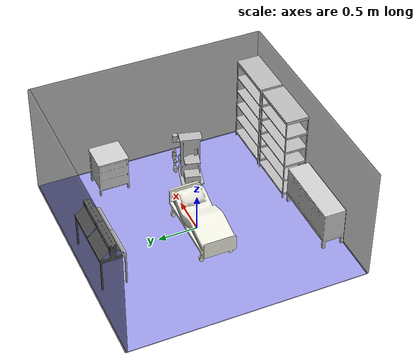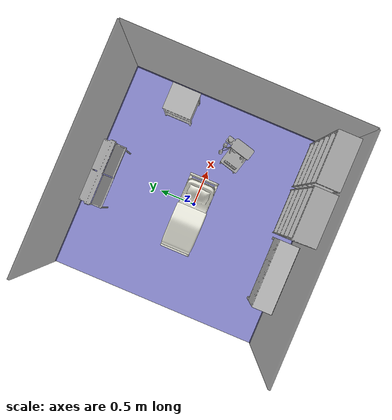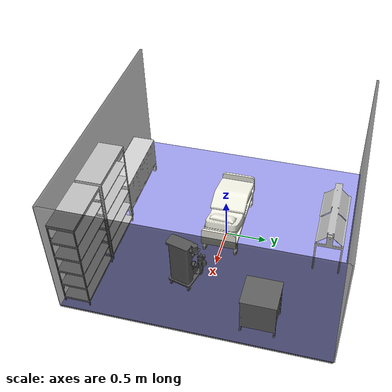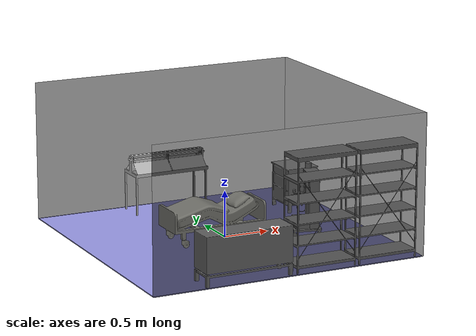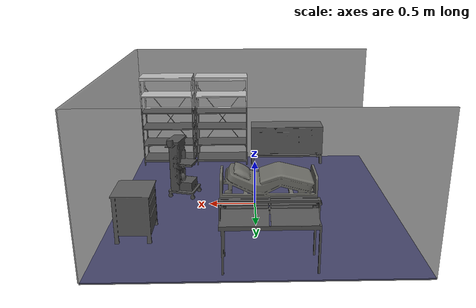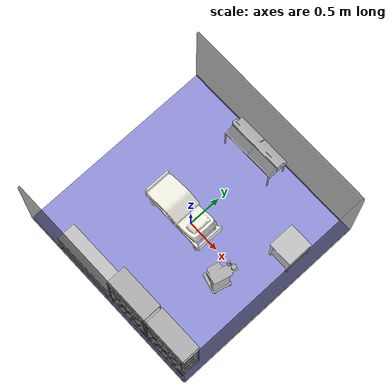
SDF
<sdf version="1.5">
 <world name="default">
  <spherical_coordinates>
   <surface_model>EARTH_WGS84</surface_model>
   <latitude_deg>37.411802</latitude_deg>
   <longitude_deg>-121.995739</longitude_deg>
   <elevation>0.0</elevation>
   <heading_deg>0</heading_deg>
  </spherical_coordinates>
  <physics name="default_physics" default="0" type="ode">
   <gravity>0 0 -9.8066</gravity>
   <ode>
    <solver>
     <type>quick</type>
     <iters>10</iters>
     <sor>1.3</sor>
     <use_dynamic_moi_rescaling>0</use_dynamic_moi_rescaling>
    </solver>
    <constraints>
     <cfm>0</cfm>
     <erp>0.2</erp>
     <contact_max_correcting_vel>1000</contact_max_correcting_vel>
     <contact_surface_layer>0.001</contact_surface_layer>
    </constraints>
   </ode>
   <max_step_size>0.004</max_step_size>
   <real_time_factor>1</real_time_factor>
   <real_time_update_rate>250</real_time_update_rate>
   <magnetic_field>6.0e-06 2.3e-05 -4.2e-05</magnetic_field>
  </physics>
  <scene><shadows>false</shadows></scene>
  <light type="directional" name="sun">
   <pose>250 250 600 0 0 0</pose>
   <diffuse>0.8 0.8 0.8 1</diffuse>
   <specular>0.2 0.2 0.2 1</specular>
   <attenuation>
    <range>1000</range>
    <constant>0.9</constant>
    <linear>0.01</linear>
    <quadratic>0.001</quadratic>
   </attenuation>
   <direction>0 0 -1</direction>
  </light>
  <model name="ground_plane">
   <static>true</static>
   <link name="link">
    <collision name="collision">
     <geometry><plane><normal>0 0 1</normal><size>250 250</size></plane></geometry>
     <surface><friction><ode><mu>1</mu><mu2>1</mu2></ode></friction></surface>
    </collision>
   </link>
  </model>
  <model name="mesh"><include><uri>model://mesh</uri><pose>-0.522 1.1 0.43 0 0 0</pose></include></model>
  <model name="chao"><include><uri>model://chao</uri></include></model>
  <model name="bed"><include><uri>model://bed</uri><pose>-0.145 0 0 0 0 0</pose></include></model>
  <model name="shelf1"><include><uri>model://shelf</uri><pose>1.1 -1.33 0 0 0 3.1415</pose></include></model>
  <model name="shelf2"><include><uri>model://shelf</uri><pose>0.4 -1.33 0 0 0 3.1415</pose></include></model>
  <model name="parede1"><include><uri>model://parede</uri><pose>0 -1.5 0.75 0 0 1.5708</pose></include></model>
  <model name="parede2"><include><uri>model://parede</uri><pose>0 1.5 0.75 0 0 1.5708</pose></include></model>
  <model name="parede3"><include><uri>model://parede</uri><pose>1.50 0 0.75 0 0 0</pose></include></model>
  <model name="anest">
   <include><uri>model://anest</uri><pose>0.8 -0.18 0 1.5708 0 1.5708</pose></include>
  </model>
  <model name="small_cabinet">
   <include><uri>model://small_cabinet</uri><pose>1.18 0.67 0 0 0 4.7123</pose></include>
  </model>
  <model name="big_cabinet">
   <include><uri>model://big_cabinet</uri><pose>-0.458 -1.35 0 1.5708 0 -1.5708</pose></include>
  </model>
 </world>
</sdf>

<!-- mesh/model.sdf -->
<sdf version='1.6'>
  <model name='mesh'>
    <link name='link_0'>
      <inertial>
        <mass>1</mass>
        <inertia>
          <ixx>0.166667</ixx>
          <ixy>0</ixy>
          <ixz>0</ixz>
          <iyy>0.166667</iyy>
          <iyz>0</iyz>
          <izz>0.166667</izz>
        </inertia>
      </inertial>
      <visual name='visual'>
        <pose>0 0 0 0 0 0</pose>
        <geometry>
          <mesh>
            <uri>model://mesh/meshes/mesh.obj</uri>
            <scale>0.0007 0.0007 0.0007</scale>
          </mesh>
        </geometry>
      </visual>
      <collision name='collision'>
        <geometry>
          <mesh>
            <uri>model://mesh/meshes/mesh.obj</uri>
            <scale>0.0007 0.0007 0.0007</scale>
          </mesh>
        </geometry>
      </collision>
    </link>
    <static>1</static>
    <allow_auto_disable>1</allow_auto_disable>
  </model>
</sdf>

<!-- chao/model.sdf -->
<sdf version='1.7'>
  <model name='chao'>
    <link name='link'>
      <inertial>
        <mass>1</mass>
        <inertia>
          <ixx>0.166667</ixx>
          <ixy>0</ixy>
          <ixz>0</ixz>
          <iyy>0.166667</iyy>
          <iyz>0</iyz>
          <izz>0.166667</izz>
        </inertia>
      </inertial>
      <self_collide>0</self_collide>
      <enable_wind>0</enable_wind>
      <kinematic>0</kinematic>
      <pose>0 0 0 0 -0 0</pose>
      <gravity>1</gravity>
      <visual name='visual'>
        <geometry>
          <box>
            <size>3 3 0.01</size>
          </box>
        </geometry>
        <material>
          <ambient>0.5 0.5 0.8 1</ambient> <!-- Azul claro -->
          <diffuse>0.6 0.6 0.9 1</diffuse> <!-- Azul brilhante -->
          <specular>0.3 0.3 0.5 1</specular> <!-- Reflexo suave -->
          <emissive>0 0 0 1</emissive>
        </material>
        <pose>0 0 0 0 -0 0</pose>
        <transparency>0</transparency>
        <cast_shadows>1</cast_shadows>
      </visual>
      <collision name='collision'>
        <laser_retro>0</laser_retro>
        <max_contacts>10</max_contacts>
        <pose>0 0 0 0 -0 0</pose>
        <geometry>
          <box>
            <size>3 3 0.01</size>
          </box>
        </geometry>
        <surface>
          <friction>
            <ode>
              <mu>1</mu>
              <mu2>1</mu2>
              <fdir1>0 0 0</fdir1>
              <slip1>0</slip1>
              <slip2>0</slip2>
            </ode>
            <torsional>
              <coefficient>1</coefficient>
              <patch_radius>0</patch_radius>
              <surface_radius>0</surface_radius>
              <use_patch_radius>1</use_patch_radius>
              <ode>
                <slip>0</slip>
              </ode>
            </torsional>
          </friction>
          <bounce>
            <restitution_coefficient>0</restitution_coefficient>
            <threshold>1e+06</threshold>
          </bounce>
          <contact>
            <collide_without_contact>0</collide_without_contact>
            <collide_without_contact_bitmask>1</collide_without_contact_bitmask>
            <collide_bitmask>1</collide_bitmask>
            <ode>
              <soft_cfm>0</soft_cfm>
              <soft_erp>0.2</soft_erp>
              <kp>1e+13</kp>
              <kd>1</kd>
              <max_vel>0.01</max_vel>
              <min_depth>0</min_depth>
            </ode>
            <bullet>
              <split_impulse>1</split_impulse>
              <split_impulse_penetration_threshold>-0.01</split_impulse_penetration_threshold>
              <soft_cfm>0</soft_cfm>
              <soft_erp>0.2</soft_erp>
              <kp>1e+13</kp>
              <kd>1</kd>
            </bullet>
          </contact>
        </surface>
      </collision>
    </link>
    <static>1</static>
    <allow_auto_disable>1</allow_auto_disable>
  </model>
</sdf>

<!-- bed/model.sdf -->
<sdf version='1.6'>
  <model name='bed'>
    <link name='link_0'>
      <inertial>
        <mass>1</mass>
        <inertia>
          <ixx>0.166667</ixx>
          <ixy>0</ixy>
          <ixz>0</ixz>
          <iyy>0.166667</iyy>
          <iyz>0</iyz>
          <izz>0.166667</izz>
        </inertia>
      </inertial>
      <visual name='visual'>
        <pose frame=''>0 0 0 0 0 0</pose>
        <geometry>
          <mesh>
            <uri>model://bed/meshes/bed.obj</uri>
            <scale>0.05 0.05 0.05</scale>
          </mesh>
        </geometry>
        <material>
          <ambient>0.9 0.9 0.85 1</ambient> <!-- Tom claro com um toque de bege -->
          <diffuse>0.95 0.95 0.9 1</diffuse> <!-- Off-white suave -->
          <specular>0.6 0.6 0.6 1</specular> <!-- Reflexo moderado para suavidade -->
          <emissive>0 0 0 1</emissive> <!-- Sem emissão de luz -->
        </material>
      </visual>
      <collision name='collision'>
        <pose frame=''>0 0 0 0 0 0</pose>
        <geometry>
          <mesh>
            <uri>model://bed/meshes/bed.obj</uri>
            <scale>0.05 0.05 0.05</scale>
          </mesh>
        </geometry>
      </collision>
    </link>
    <static>1</static>
    <allow_auto_disable>1</allow_auto_disable>
  </model>
</sdf>

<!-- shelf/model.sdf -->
<sdf version='1.6'>
  <model name='shelf'>
    <link name='link_0'>
      <inertial>
        <mass>1</mass>
        <inertia>
          <ixx>0.166667</ixx>
          <ixy>0</ixy>
          <ixz>0</ixz>
          <iyy>0.166667</iyy>
          <iyz>0</iyz>
          <izz>0.166667</izz>
        </inertia>
      </inertial>
      <visual name='visual'>
        <pose>0 0 0 1.5708 0 0</pose>
        <geometry>
          <mesh>
            <uri>model://shelf/meshes/shelf.obj</uri>
            <scale>0.0145 0.0145 0.0145</scale>
          </mesh>
        </geometry>
      </visual>
      <collision name='collision'>
        <geometry>
          <mesh>
            <uri>model://shelf/meshes/shelf.obj</uri>
            <scale>0.0145 0.0145 0.0145</scale>
          </mesh>
        </geometry>
      </collision>
    </link>
    <static>1</static>
    <allow_auto_disable>1</allow_auto_disable>
  </model>
</sdf>

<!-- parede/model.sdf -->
<sdf version='1.7'>
  <model name='parede'>
    <link name='link'>
      <visual name='visual'>
        <geometry>
          <box>
            <size>0.03 3 1.5</size>
          </box>
        </geometry>
        <material>
          <ambient>0 0 0 0.5</ambient> <!-- Transparência controlada aqui -->
          <diffuse>0 0 0 0.5</diffuse> <!-- Preto semi-transparente -->
          <specular>0.2 0.2 0.2 1</specular> <!-- Reflexo leve -->
        </material>
        <transparency>0.5</transparency> <!-- Meio transparente -->
      </visual>
      <collision name='collision'>
        <geometry>
          <box>
            <size>0.03 3 1.5</size>
          </box>
        </geometry>
      </collision>
    </link>
    <static>1</static>
  </model>
</sdf>

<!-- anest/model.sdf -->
<sdf version='1.6'>
  <model name='anest'>
    <link name='link_0'>
      <visual name='visual'>
        <pose frame=''>0 0 0 0 0 0</pose>
        <geometry>
          <mesh>
            <uri>model://anest/meshes/anest.obj</uri>
            <scale>0.5 0.5 0.5</scale>
          </mesh>
        </geometry>
      </visual>
      <collision name='collision'>
        <pose frame=''>0 0 0 0 0 0</pose>
        <geometry>
          <box>
            <size>1 1 1</size>
          </box>
        </geometry>
      </collision>
    </link>
    <static>1</static>
    <allow_auto_disable>1</allow_auto_disable>
  </model>
</sdf>

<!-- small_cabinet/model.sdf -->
<sdf version='1.6'>
  <model name='small_cabinet'>
    <link name='link_0'>
      <inertial>
        <mass>1</mass>
        <inertia>
          <ixx>0.166667</ixx>
          <ixy>0</ixy>
          <ixz>0</ixz>
          <iyy>0.166667</iyy>
          <iyz>0</iyz>
          <izz>0.166667</izz>
        </inertia>
      </inertial>
      <visual name='visual'>
        <pose>0 0 0 1.5708 0 0</pose>
        <geometry>
          <mesh>
            <uri>model://small_cabinet/meshes/small_cabinet.obj</uri>
            <scale>0.0055 0.0055 0.0055</scale>
          </mesh>
        </geometry>
        <material>
          <ambient>0.6 0.6 0.6 1</ambient> <!-- Cor clara sob luz ambiente -->
          <diffuse>0.8 0.8 0.8 1</diffuse> <!-- Cor base metálica clara -->
          <specular>1.0 1.0 1.0 1</specular> <!-- Reflexo forte para aparência de alumínio -->
          <emissive>0 0 0 1</emissive> <!-- Sem emissão de luz -->
        </material>
      </visual>
      <collision name='collision'>
        <geometry>
          <mesh>
            <uri>model://small_cabinet/meshes/small_cabinet.obj</uri>
            <scale>0.0055 0.0055 0.0055</scale>
          </mesh>
        </geometry>
      </collision>
    </link>
    <static>1</static>
    <allow_auto_disable>1</allow_auto_disable>
  </model>
</sdf>

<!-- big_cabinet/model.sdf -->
<sdf version='1.6'>
  <model name='big_cabinet'>
    <link name='link_0'>
      <inertial>
        <mass>1</mass>
        <inertia>
          <ixx>0.166667</ixx>
          <ixy>0</ixy>
          <ixz>0</ixz>
          <iyy>0.166667</iyy>
          <iyz>0</iyz>
          <izz>0.166667</izz>
        </inertia>
      </inertial>
      <visual name='visual'>
        <pose>0 0 0 0 0 0</pose>
        <geometry>
          <mesh>
            <uri>model://big_cabinet/meshes/big_cabinet.obj</uri>
            <scale>0.007 0.007 0.007</scale>
          </mesh>
        </geometry>
        <material>
          <ambient>0.6 0.6 0.6 1</ambient> <!-- Cor clara sob luz ambiente -->
          <diffuse>0.8 0.8 0.8 1</diffuse> <!-- Cor base metálica clara -->
          <specular>1.0 1.0 1.0 1</specular> <!-- Reflexo forte para aparência de alumínio -->
          <emissive>0 0 0 1</emissive> <!-- Sem emissão de luz -->
        </material>
      </visual>
      <collision name='collision'>
        <geometry>
          <mesh>
            <uri>model://big_cabinet/meshes/big_cabinet.obj</uri>
            <scale>0.007 0.007 0.007</scale>
          </mesh>
        </geometry>
      </collision>
    </link>
    <static>1</static>
    <allow_auto_disable>1</allow_auto_disable>
  </model>
</sdf>
